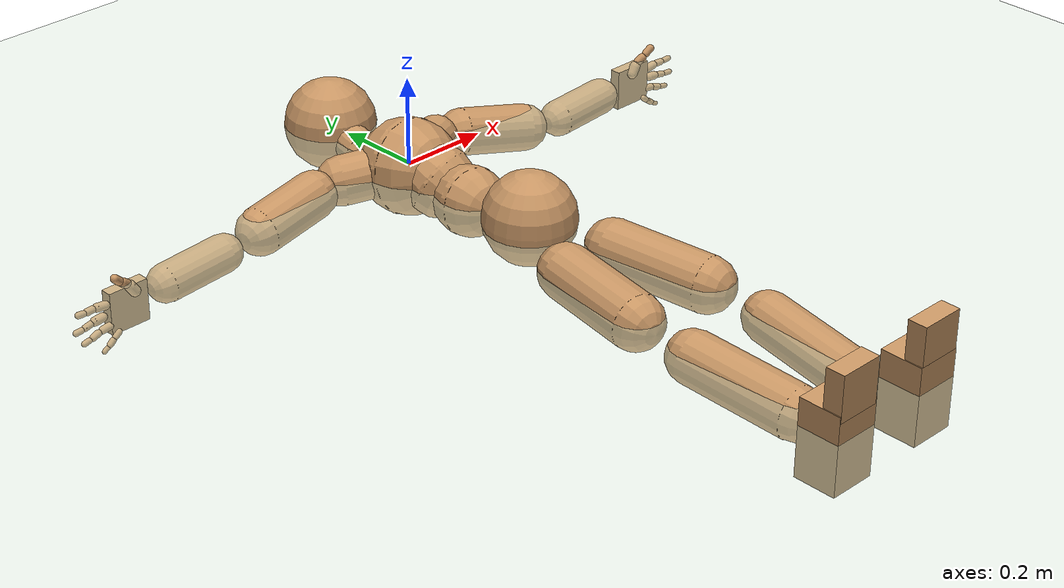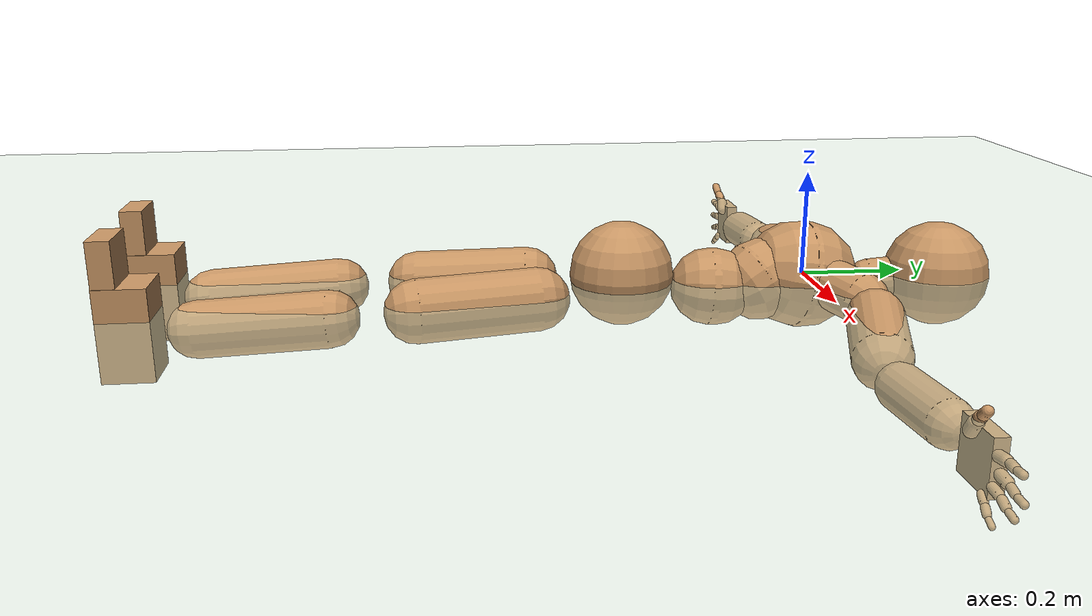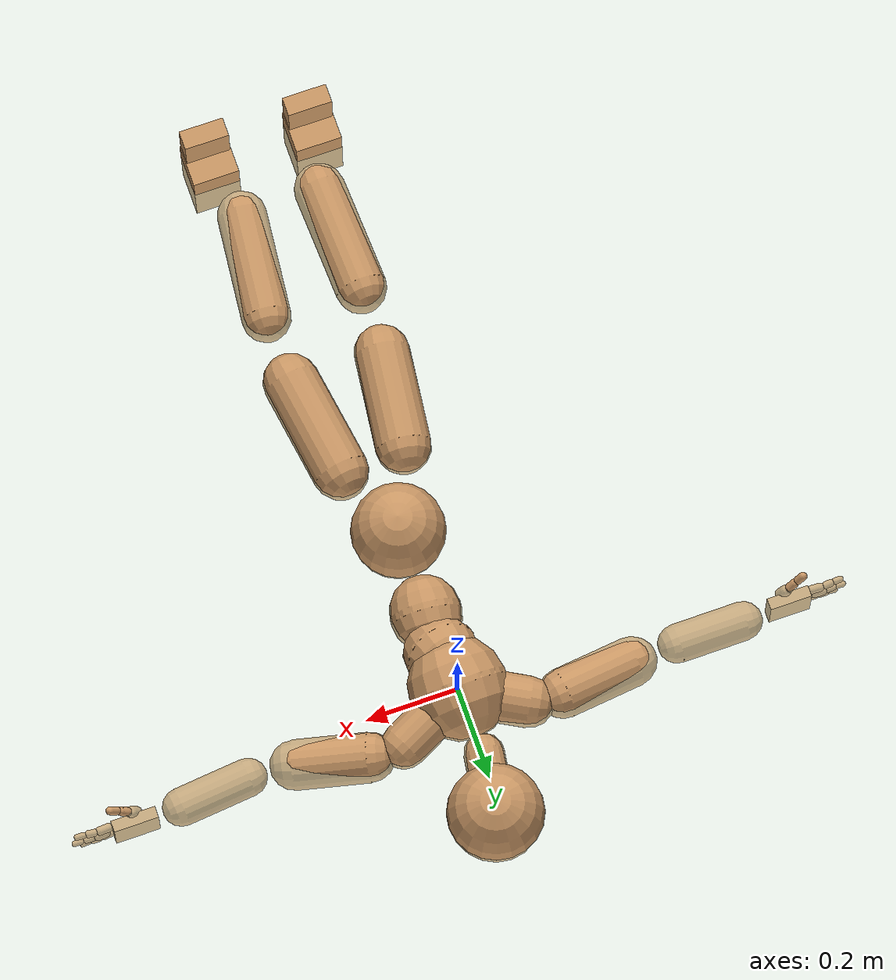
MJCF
<mujoco model="humanoid">
  <compiler coordinate="local"/>
  <default>
    <joint damping="0.0" armature="0.01" stiffness="0.0" limited="true"/>
    <geom conaffinity="1" condim="3" contype="7" margin="0.001" rgba="0.8 0.6 .4 1"/>
  </default>
  <asset>
    <texture type="skybox" builtin="gradient" rgb1=".4 .5 .6" rgb2="0 0 0" width="100" height="100"/>
    <texture builtin="flat" height="1278" mark="cross" markrgb="1 1 1" name="texgeom" random="0.01" rgb1="0.8 0.6 0.4" rgb2="0.8 0.6 0.4" type="cube" width="127"/>
    <texture builtin="checker" height="100" name="texplane" rgb1="0 0 0" rgb2="0.8 0.8 0.8" type="2d" width="100"/>
    <material name="MatPlane" reflectance="0.5" shininess="1" specular="1" texrepeat="60 60" texture="texplane"/>
    <material name="geom" texture="texgeom" texuniform="true"/>
  </asset>
  <worldbody>
    <light cutoff="100" diffuse="1 1 1" dir="-0 0 -1.3" directional="true" exponent="1" pos="0 0 1.3" specular=".1 .1 .1"/>
    <geom conaffinity="1" condim="3" name="floor" pos="0 0 0" rgba="0.8 0.9 0.8 1" size="100 100 .2" type="plane" material="MatPlane"/>
    <body name="Pelvis" pos="0.0031 -0.3633 0.0134">
      <freejoint name="Pelvis"/>
      <geom type="sphere" contype="1" conaffinity="1" density="4629.6296296296305" size="0.1008" pos="0.0000 0.0000 0.0000" name="Pelvis"/>
      <body name="L_Hip" pos="0.0587 -0.0945 -0.0247">
        <joint name="L_Hip_x" type="hinge" pos="0 0 0" axis="1 0 0" user="250 2.5 1 500 10 2" armature="0.01" range="-90.0000 90.0000" damping="0" stiffness="0"/>
        <joint name="L_Hip_y" type="hinge" pos="0 0 0" axis="0 1 0" user="250 2.5 1 500 10 2" armature="0.01" range="-90.0000 90.0000" damping="0" stiffness="0"/>
        <joint name="L_Hip_z" type="hinge" pos="0 0 0" axis="0 0 1" user="250 2.5 1 500 10 2" armature="0.01" range="-90.0000 90.0000" damping="0" stiffness="0"/>
        <geom type="capsule" contype="1" conaffinity="1" density="2040.816327" fromto="0.0110 -0.0749 -0.0017 0.0441 -0.2996 -0.0067" size="0.0604" name="L_Hip"/>
        <body name="L_Knee" pos="0.0551 -0.3746 -0.0083">
          <joint name="L_Knee_x" type="hinge" pos="0 0 0" axis="1 0 0" user="250 2.5 1 500 10 2" armature="0.01" range="-180.0000 180.0000" damping="0" stiffness="0"/>
          <joint name="L_Knee_y" type="hinge" pos="0 0 0" axis="0 1 0" user="250 2.5 1 500 10 2" armature="0.01" range="-5.6250 5.6250" damping="0" stiffness="0"/>
          <joint name="L_Knee_z" type="hinge" pos="0 0 0" axis="0 0 1" user="250 2.5 1 500 10 2" armature="0.01" range="-5.6250 5.6250" damping="0" stiffness="0"/>
          <geom type="capsule" contype="1" conaffinity="1" density="1234.567901" fromto="-0.0087 -0.0800 -0.0064 -0.0349 -0.3200 -0.0254" size="0.0535" name="L_Knee"/>
          <body name="L_Ankle" pos="-0.0436 -0.4001 -0.0318">
            <joint name="L_Ankle_x" type="hinge" pos="0 0 0" axis="1 0 0" user="150 2.5 1 500 10 2" armature="0.01" range="-90.0000 90.0000" damping="0" stiffness="0"/>
            <joint name="L_Ankle_y" type="hinge" pos="0 0 0" axis="0 1 0" user="150 2.5 1 500 10 2" armature="0.01" range="-90.0000 90.0000" damping="0" stiffness="0"/>
            <joint name="L_Ankle_z" type="hinge" pos="0 0 0" axis="0 0 1" user="150 2.5 1 500 10 2" armature="0.01" range="-90.0000 90.0000" damping="0" stiffness="0"/>
            <geom type="box" density="448.137585" pos="0.0414 -0.0284 0.0235" size="0.0505 0.0466 0.0858" quat="1.0000 0.0000 0.0000 0.0000" name="L_Ankle"/>
            <body name="L_Toe" pos="0.0482 -0.0575 0.1186">
              <joint name="L_Toe_x" type="hinge" pos="0 0 0" axis="1 0 0" user="150 1 1 500 1 1" armature="0.01" range="-90.0000 90.0000" damping="0" stiffness="0"/>
              <joint name="L_Toe_y" type="hinge" pos="0 0 0" axis="0 1 0" user="150 1 1 500 1 1" armature="0.01" range="-45.0000 45.0000" damping="0" stiffness="0"/>
              <joint name="L_Toe_z" type="hinge" pos="0 0 0" axis="0 0 1" user="150 1 1 500 1 1" armature="0.01" range="-45.0000 45.0000" damping="0" stiffness="0"/>
              <geom type="box" density="421.147635" pos="-0.0067 0.0033 0.0257" size="0.0484 0.0208 0.0499" quat="1.0000 0.0000 0.0000 0.0000" name="L_Toe"/>
            </body>
          </body>
        </body>
      </body>
      <body name="R_Hip" pos="-0.0636 -0.106 -0.0197">
        <joint name="R_Hip_x" type="hinge" pos="0 0 0" axis="1 0 0" user="250 2.5 1 500 10 2" armature="0.01" range="-90.0000 90.0000" damping="0" stiffness="0"/>
        <joint name="R_Hip_y" type="hinge" pos="0 0 0" axis="0 1 0" user="250 2.5 1 500 10 2" armature="0.01" range="-90.0000 90.0000" damping="0" stiffness="0"/>
        <joint name="R_Hip_z" type="hinge" pos="0 0 0" axis="0 0 1" user="250 2.5 1 500 10 2" armature="0.01" range="-90.0000 90.0000" damping="0" stiffness="0"/>
        <geom type="capsule" contype="1" conaffinity="1" density="2040.816327" fromto="-0.0089 -0.0716 -0.0032 -0.0358 -0.2863 -0.0128" size="0.0597" name="R_Hip"/>
        <body name="R_Knee" pos="-0.0447 -0.3578 -0.016">
          <joint name="R_Knee_x" type="hinge" pos="0 0 0" axis="1 0 0" user="250 2.5 1 500 10 2" armature="0.01" range="-180.0000 180.0000" damping="0" stiffness="0"/>
          <joint name="R_Knee_y" type="hinge" pos="0 0 0" axis="0 1 0" user="250 2.5 1 500 10 2" armature="0.01" range="-5.6250 5.6250" damping="0" stiffness="0"/>
          <joint name="R_Knee_z" type="hinge" pos="0 0 0" axis="0 0 1" user="250 2.5 1 500 10 2" armature="0.01" range="-5.6250 5.6250" damping="0" stiffness="0"/>
          <geom type="capsule" contype="1" conaffinity="1" density="1234.567901" fromto="0.0030 -0.0815 -0.0040 0.0121 -0.3261 -0.0160" size="0.0552" name="R_Knee"/>
          <body name="R_Ankle" pos="0.0151 -0.4076 -0.02">
            <joint name="R_Ankle_x" type="hinge" pos="0 0 0" axis="1 0 0" user="150 1 1 500 10 2" armature="0.01" range="-90.0000 90.0000" damping="0" stiffness="0"/>
            <joint name="R_Ankle_y" type="hinge" pos="0 0 0" axis="0 1 0" user="150 1 1 500 10 2" armature="0.01" range="-90.0000 90.0000" damping="0" stiffness="0"/>
            <joint name="R_Ankle_z" type="hinge" pos="0 0 0" axis="0 0 1" user="150 1 1 500 10 2" armature="0.01" range="-90.0000 90.0000" damping="0" stiffness="0"/>
            <geom type="box" density="448.12962" pos="-0.0247 -0.0260 0.0144" size="0.0505 0.0466 0.0858" quat="1.0000 0.0000 0.0000 0.0000" name="R_Ankle"/>
            <body name="R_Toe" pos="-0.0395 -0.0579 0.1195">
              <joint name="R_Toe_x" type="hinge" pos="0 0 0" axis="1 0 0" user="150 1 1 500 1 1" armature="0.01" range="-90.0000 90.0000" damping="0" stiffness="0"/>
              <joint name="R_Toe_y" type="hinge" pos="0 0 0" axis="0 1 0" user="150 1 1 500 1 1" armature="0.01" range="-45.0000 45.0000" damping="0" stiffness="0"/>
              <joint name="R_Toe_z" type="hinge" pos="0 0 0" axis="0 0 1" user="150 1 1 500 1 1" armature="0.01" range="-45.0000 45.0000" damping="0" stiffness="0"/>
              <geom type="box" density="421.148101" pos="0.0148 0.0060 0.0158" size="0.0484 0.0208 0.0499" quat="1.0000 0.0000 0.0000 0.0000" name="R_Toe"/>
            </body>
          </body>
        </body>
      </body>
      <body name="Torso" pos="-0.0027 0.1122 -0.0296">
        <joint name="Torso_x" type="hinge" pos="0 0 0" axis="1 0 0" user="500 5 1 500 10 2" armature="0.01" range="-60.0000 60.0000" damping="0" stiffness="0"/>
        <joint name="Torso_y" type="hinge" pos="0 0 0" axis="0 1 0" user="500 5 1 500 10 2" armature="0.01" range="-60.0000 60.0000" damping="0" stiffness="0"/>
        <joint name="Torso_z" type="hinge" pos="0 0 0" axis="0 0 1" user="500 5 1 500 10 2" armature="0.01" range="-60.0000 60.0000" damping="0" stiffness="0"/>
        <geom type="capsule" contype="1" conaffinity="1" density="2040.816327" fromto="0.0046 0.0612 -0.0028 0.0056 0.0748 -0.0035" size="0.0756" name="Torso"/>
        <body name="Spine" pos="0.0102 0.1359 -0.0063">
          <joint name="Spine_x" type="hinge" pos="0 0 0" axis="1 0 0" user="500 5 1 500 10 2" armature="0.01" range="-60.0000 60.0000" damping="0" stiffness="0"/>
          <joint name="Spine_y" type="hinge" pos="0 0 0" axis="0 1 0" user="500 5 1 500 10 2" armature="0.01" range="-60.0000 60.0000" damping="0" stiffness="0"/>
          <joint name="Spine_z" type="hinge" pos="0 0 0" axis="0 0 1" user="500 5 1 500 10 2" armature="0.01" range="-60.0000 60.0000" damping="0" stiffness="0"/>
          <geom type="capsule" contype="1" conaffinity="1" density="2040.816327" fromto="-0.0053 0.0243 0.0133 -0.0065 0.0297 0.0163" size="0.0791" name="Spine"/>
          <body name="Chest" pos="-0.0118 0.0539 0.0296">
            <joint name="Chest_x" type="hinge" pos="0 0 0" axis="1 0 0" user="500 5 1 500 10 2" armature="0.01" range="-60.0000 60.0000" damping="0" stiffness="0"/>
            <joint name="Chest_y" type="hinge" pos="0 0 0" axis="0 1 0" user="500 5 1 500 10 2" armature="0.01" range="-60.0000 60.0000" damping="0" stiffness="0"/>
            <joint name="Chest_z" type="hinge" pos="0 0 0" axis="0 0 1" user="500 5 1 500 10 2" armature="0.01" range="-60.0000 60.0000" damping="0" stiffness="0"/>
            <geom type="capsule" contype="1" conaffinity="1" density="2040.816327" fromto="-0.0022 0.0514 -0.0082 -0.0027 0.0629 -0.0101" size="0.1055" name="Chest"/>
            <body name="Neck" pos="-0.0127 0.1695 -0.0332">
              <joint name="Neck_x" type="hinge" pos="0 0 0" axis="1 0 0" user="150 1 1 250 50 4" armature="0.01" range="-180.0000 180.0000" damping="0" stiffness="0"/>
              <joint name="Neck_y" type="hinge" pos="0 0 0" axis="0 1 0" user="150 1 1 250 50 4" armature="0.01" range="-180.0000 180.0000" damping="0" stiffness="0"/>
              <joint name="Neck_z" type="hinge" pos="0 0 0" axis="0 0 1" user="150 1 1 250 50 4" armature="0.01" range="-180.0000 180.0000" damping="0" stiffness="0"/>
              <geom type="capsule" contype="1" conaffinity="1" density="1000" fromto="0.0051 0.0326 0.0042 0.0203 0.1305 0.0167" size="0.043" name="Neck"/>
              <body name="Head" pos="0.0254 0.1631 0.0208">
                <joint name="Head_x" type="hinge" pos="0 0 0" axis="1 0 0" user="150 1 1 250 50 4" armature="0.01" range="-90.0000 90.0000" damping="0" stiffness="0"/>
                <joint name="Head_y" type="hinge" pos="0 0 0" axis="0 1 0" user="150 1 1 250 50 4" armature="0.01" range="-90.0000 90.0000" damping="0" stiffness="0"/>
                <joint name="Head_z" type="hinge" pos="0 0 0" axis="0 0 1" user="150 1 1 250 50 4" armature="0.01" range="-90.0000 90.0000" damping="0" stiffness="0"/>
                <geom type="sphere" contype="1" conaffinity="1" density="1000" size="0.1025" pos="0.0000 0.0000 0.0000" name="Head"/>
              </body>
            </body>
            <body name="L_Thorax" pos="0.0468 0.087 -0.0078">
              <joint name="L_Thorax_x" type="hinge" pos="0 0 0" axis="1 0 0" user="200 2 1 500 50 4" armature="0.01" range="-180.0000 180.0000" damping="0" stiffness="0"/>
              <joint name="L_Thorax_y" type="hinge" pos="0 0 0" axis="0 1 0" user="200 2 1 500 50 4" armature="0.01" range="-180.0000 180.0000" damping="0" stiffness="0"/>
              <joint name="L_Thorax_z" type="hinge" pos="0 0 0" axis="0 0 1" user="200 2 1 500 50 4" armature="0.01" range="-180.0000 180.0000" damping="0" stiffness="0"/>
              <geom type="capsule" contype="1" conaffinity="1" density="1000" fromto="0.0240 0.0116 -0.0032 0.0961 0.0464 -0.0128" size="0.0496" name="L_Thorax"/>
              <body name="L_Shoulder" pos="0.1201 0.058 -0.016">
                <joint name="L_Shoulder_x" type="hinge" pos="0 0 0" axis="1 0 0" user="200 2 1 500 50 4" armature="0.01" range="-180.0000 180.0000" damping="0" stiffness="0"/>
                <joint name="L_Shoulder_y" type="hinge" pos="0 0 0" axis="0 1 0" user="200 2 1 500 50 4" armature="0.01" range="-180.0000 180.0000" damping="0" stiffness="0"/>
                <joint name="L_Shoulder_z" type="hinge" pos="0 0 0" axis="0 0 1" user="200 2 1 500 50 4" armature="0.01" range="-180.0000 180.0000" damping="0" stiffness="0"/>
                <geom type="capsule" contype="1" conaffinity="1" density="1000" fromto="0.0500 -0.0142 -0.0087 0.2001 -0.0570 -0.0346" size="0.053" name="L_Shoulder"/>
                <body name="L_Elbow" pos="0.2502 -0.0712 -0.0433">
                  <joint name="L_Elbow_x" type="hinge" pos="0 0 0" axis="1 0 0" user="150 1 1 150 10 2" armature="0.01" range="-720.0000 720.0000" damping="0" stiffness="0"/>
                  <joint name="L_Elbow_y" type="hinge" pos="0 0 0" axis="0 1 0" user="150 1 1 150 10 2" armature="0.01" range="-720.0000 720.0000" damping="0" stiffness="0"/>
                  <joint name="L_Elbow_z" type="hinge" pos="0 0 0" axis="0 0 1" user="150 1 1 150 10 2" armature="0.01" range="-720.0000 720.0000" damping="0" stiffness="0"/>
                  <geom type="capsule" contype="1" conaffinity="1" density="1000" fromto="0.0499 0.0048 -0.0003 0.1994 0.0190 -0.0012" size="0.0409" name="L_Elbow"/>
                  <body name="L_Wrist" pos="0.2493 0.0238 -0.0015">
                    <joint name="L_Wrist_x" type="hinge" pos="0 0 0" axis="1 0 0" user="100 1 1 150 1 1" armature="0.01" range="-180.0000 180.0000" damping="0" stiffness="0"/>
                    <joint name="L_Wrist_y" type="hinge" pos="0 0 0" axis="0 1 0" user="100 1 1 150 1 1" armature="0.01" range="-180.0000 180.0000" damping="0" stiffness="0"/>
                    <joint name="L_Wrist_z" type="hinge" pos="0 0 0" axis="0 0 1" user="100 1 1 150 1 1" armature="0.01" range="-180.0000 180.0000" damping="0" stiffness="0"/>
                    <geom type="box" density="1206.445546" pos="0.0521 -0.0011 -0.0029" size="0.0482 0.0124 0.0467" quat="1.0000 0.0000 0.0000 0.0000" name="L_Wrist"/>
                    <body name="L_Index1" pos="0.1014 -0.0083 0.0199">
                      <joint name="L_Index1_x" type="hinge" pos="0 0 0" axis="1 0 0" user="100 10 1 150" armature="0.01" range="-180.0000 180.0000" damping="0" stiffness="0"/>
                      <joint name="L_Index1_y" type="hinge" pos="0 0 0" axis="0 1 0" user="100 10 1 150" armature="0.01" range="-180.0000 180.0000" damping="0" stiffness="0"/>
                      <joint name="L_Index1_z" type="hinge" pos="0 0 0" axis="0 0 1" user="100 10 1 150" armature="0.01" range="-180.0000 180.0000" damping="0" stiffness="0"/>
                      <geom type="capsule" contype="1" conaffinity="1" density="1000" fromto="0.0064 0.0005 0.0006 0.0256 0.0018 0.0024" size="0.0093" name="L_Index1"/>
                      <body name="L_Index2" pos="0.032 0.0023 0.003">
                        <joint name="L_Index2_x" type="hinge" pos="0 0 0" axis="1 0 0" user="100 10 1 150" armature="0.01" range="-180.0000 180.0000" damping="0" stiffness="0"/>
                        <joint name="L_Index2_y" type="hinge" pos="0 0 0" axis="0 1 0" user="100 10 1 150" armature="0.01" range="-180.0000 180.0000" damping="0" stiffness="0"/>
                        <joint name="L_Index2_z" type="hinge" pos="0 0 0" axis="0 0 1" user="100 10 1 150" armature="0.01" range="-180.0000 180.0000" damping="0" stiffness="0"/>
                        <geom type="capsule" contype="1" conaffinity="1" density="1000" fromto="0.0045 -0.0005 -0.0000 0.0180 -0.0019 -0.0000" size="0.0077" name="L_Index2"/>
                        <body name="L_Index3" pos="0.0225 -0.0024 0">
                          <joint name="L_Index3_x" type="hinge" pos="0 0 0" axis="1 0 0" user="100 10 1 150" armature="0.01" range="-180.0000 180.0000" damping="0" stiffness="0"/>
                          <joint name="L_Index3_y" type="hinge" pos="0 0 0" axis="0 1 0" user="100 10 1 150" armature="0.01" range="-180.0000 180.0000" damping="0" stiffness="0"/>
                          <joint name="L_Index3_z" type="hinge" pos="0 0 0" axis="0 0 1" user="100 10 1 150" armature="0.01" range="-180.0000 180.0000" damping="0" stiffness="0"/>
                          <geom type="capsule" contype="1" conaffinity="1" density="1000" fromto="0.0049 -0.0001 0.0004 0.0196 -0.0003 0.0016" size="0.0065" name="L_Index3"/>
                        </body>
                      </body>
                    </body>
                    <body name="L_Middle1" pos="0.109 -0.0059 -0.0039">
                      <joint name="L_Middle1_x" type="hinge" pos="0 0 0" axis="1 0 0" user="100 10 1 150" armature="0.01" range="-180.0000 180.0000" damping="0" stiffness="0"/>
                      <joint name="L_Middle1_y" type="hinge" pos="0 0 0" axis="0 1 0" user="100 10 1 150" armature="0.01" range="-180.0000 180.0000" damping="0" stiffness="0"/>
                      <joint name="L_Middle1_z" type="hinge" pos="0 0 0" axis="0 0 1" user="100 10 1 150" armature="0.01" range="-180.0000 180.0000" damping="0" stiffness="0"/>
                      <geom type="capsule" contype="1" conaffinity="1" density="1000" fromto="0.0061 0.0002 -0.0008 0.0245 0.0007 -0.0032" size="0.0096" name="L_Middle1"/>
                      <body name="L_Middle2" pos="0.0306 0.0008 -0.0041">
                        <joint name="L_Middle2_x" type="hinge" pos="0 0 0" axis="1 0 0" user="100 10 1 150" armature="0.01" range="-180.0000 180.0000" damping="0" stiffness="0"/>
                        <joint name="L_Middle2_y" type="hinge" pos="0 0 0" axis="0 1 0" user="100 10 1 150" armature="0.01" range="-180.0000 180.0000" damping="0" stiffness="0"/>
                        <joint name="L_Middle2_z" type="hinge" pos="0 0 0" axis="0 0 1" user="100 10 1 150" armature="0.01" range="-180.0000 180.0000" damping="0" stiffness="0"/>
                        <geom type="capsule" contype="1" conaffinity="1" density="1000" fromto="0.0047 -0.0004 -0.0008 0.0188 -0.0016 -0.0033" size="0.0071" name="L_Middle2"/>
                        <body name="L_Middle3" pos="0.0235 -0.002 -0.0042">
                          <joint name="L_Middle3_x" type="hinge" pos="0 0 0" axis="1 0 0" user="100 10 1 150" armature="0.01" range="-180.0000 180.0000" damping="0" stiffness="0"/>
                          <joint name="L_Middle3_y" type="hinge" pos="0 0 0" axis="0 1 0" user="100 10 1 150" armature="0.01" range="-180.0000 180.0000" damping="0" stiffness="0"/>
                          <joint name="L_Middle3_z" type="hinge" pos="0 0 0" axis="0 0 1" user="100 10 1 150" armature="0.01" range="-180.0000 180.0000" damping="0" stiffness="0"/>
                          <geom type="capsule" contype="1" conaffinity="1" density="1000" fromto="0.0051 -0.0000 -0.0004 0.0204 -0.0000 -0.0017" size="0.0061" name="L_Middle3"/>
                        </body>
                      </body>
                    </body>
                    <body name="L_Pinky1" pos="0.0836 -0.0144 -0.0443">
                      <joint name="L_Pinky1_x" type="hinge" pos="0 0 0" axis="1 0 0" user="100 10 1 150" armature="0.01" range="-180.0000 180.0000" damping="0" stiffness="0"/>
                      <joint name="L_Pinky1_y" type="hinge" pos="0 0 0" axis="0 1 0" user="100 10 1 150" armature="0.01" range="-180.0000 180.0000" damping="0" stiffness="0"/>
                      <joint name="L_Pinky1_z" type="hinge" pos="0 0 0" axis="0 0 1" user="100 10 1 150" armature="0.01" range="-180.0000 180.0000" damping="0" stiffness="0"/>
                      <geom type="capsule" contype="1" conaffinity="1" density="1000" fromto="0.0031 -0.0002 -0.0024 0.0125 -0.0009 -0.0097" size="0.0068" name="L_Pinky1"/>
                      <body name="L_Pinky2" pos="0.0156 -0.0012 -0.0121">
                        <joint name="L_Pinky2_x" type="hinge" pos="0 0 0" axis="1 0 0" user="100 10 1 150" armature="0.01" range="-180.0000 180.0000" damping="0" stiffness="0"/>
                        <joint name="L_Pinky2_y" type="hinge" pos="0 0 0" axis="0 1 0" user="100 10 1 150" armature="0.01" range="-180.0000 180.0000" damping="0" stiffness="0"/>
                        <joint name="L_Pinky2_z" type="hinge" pos="0 0 0" axis="0 0 1" user="100 10 1 150" armature="0.01" range="-180.0000 180.0000" damping="0" stiffness="0"/>
                        <geom type="capsule" contype="1" conaffinity="1" density="1000" fromto="0.0031 -0.0003 -0.0022 0.0125 -0.0014 -0.0090" size="0.0066" name="L_Pinky2"/>
                        <body name="L_Pinky3" pos="0.0156 -0.0017 -0.0112">
                          <joint name="L_Pinky3_x" type="hinge" pos="0 0 0" axis="1 0 0" user="100 10 1 150" armature="0.01" range="-180.0000 180.0000" damping="0" stiffness="0"/>
                          <joint name="L_Pinky3_y" type="hinge" pos="0 0 0" axis="0 1 0" user="100 10 1 150" armature="0.01" range="-180.0000 180.0000" damping="0" stiffness="0"/>
                          <joint name="L_Pinky3_z" type="hinge" pos="0 0 0" axis="0 0 1" user="100 10 1 150" armature="0.01" range="-180.0000 180.0000" damping="0" stiffness="0"/>
                          <geom type="capsule" contype="1" conaffinity="1" density="1000" fromto="0.0035 0.0001 -0.0018 0.0141 0.0002 -0.0074" size="0.005" name="L_Pinky3"/>
                        </body>
                      </body>
                    </body>
                    <body name="L_Ring1" pos="0.097 -0.009 -0.0277">
                      <joint name="L_Ring1_x" type="hinge" pos="0 0 0" axis="1 0 0" user="100 10 1 150" armature="0.01" range="-180.0000 180.0000" damping="0" stiffness="0"/>
                      <joint name="L_Ring1_y" type="hinge" pos="0 0 0" axis="0 1 0" user="100 10 1 150" armature="0.01" range="-180.0000 180.0000" damping="0" stiffness="0"/>
                      <joint name="L_Ring1_z" type="hinge" pos="0 0 0" axis="0 0 1" user="100 10 1 150" armature="0.01" range="-180.0000 180.0000" damping="0" stiffness="0"/>
                      <geom type="capsule" contype="1" conaffinity="1" density="1000" fromto="0.0056 0.0003 -0.0011 0.0225 0.0012 -0.0042" size="0.0081" name="L_Ring1"/>
                      <body name="L_Ring2" pos="0.0281 0.0015 -0.0053">
                        <joint name="L_Ring2_x" type="hinge" pos="0 0 0" axis="1 0 0" user="100 10 1 150" armature="0.01" range="-180.0000 180.0000" damping="0" stiffness="0"/>
                        <joint name="L_Ring2_y" type="hinge" pos="0 0 0" axis="0 1 0" user="100 10 1 150" armature="0.01" range="-180.0000 180.0000" damping="0" stiffness="0"/>
                        <joint name="L_Ring2_z" type="hinge" pos="0 0 0" axis="0 0 1" user="100 10 1 150" armature="0.01" range="-180.0000 180.0000" damping="0" stiffness="0"/>
                        <geom type="capsule" contype="1" conaffinity="1" density="1000" fromto="0.0046 -0.0003 -0.0014 0.0183 -0.0012 -0.0057" size="0.0075" name="L_Ring2"/>
                        <body name="L_Ring3" pos="0.0229 -0.0015 -0.0071">
                          <joint name="L_Ring3_x" type="hinge" pos="0 0 0" axis="1 0 0" user="100 10 1 150" armature="0.01" range="-180.0000 180.0000" damping="0" stiffness="0"/>
                          <joint name="L_Ring3_y" type="hinge" pos="0 0 0" axis="0 1 0" user="100 10 1 150" armature="0.01" range="-180.0000 180.0000" damping="0" stiffness="0"/>
                          <joint name="L_Ring3_z" type="hinge" pos="0 0 0" axis="0 0 1" user="100 10 1 150" armature="0.01" range="-180.0000 180.0000" damping="0" stiffness="0"/>
                          <geom type="capsule" contype="1" conaffinity="1" density="1000" fromto="0.0050 0.0001 -0.0010 0.0199 0.0004 -0.0041" size="0.0058" name="L_Ring3"/>
                        </body>
                      </body>
                    </body>
                    <body name="L_Thumb1" pos="0.0401 -0.0181 0.0263">
                      <joint name="L_Thumb1_x" type="hinge" pos="0 0 0" axis="1 0 0" user="100 10 1 150" armature="0.01" range="-180.0000 180.0000" damping="0" stiffness="0"/>
                      <joint name="L_Thumb1_y" type="hinge" pos="0 0 0" axis="0 1 0" user="100 10 1 150" armature="0.01" range="-180.0000 180.0000" damping="0" stiffness="0"/>
                      <joint name="L_Thumb1_z" type="hinge" pos="0 0 0" axis="0 0 1" user="100 10 1 150" armature="0.01" range="-180.0000 180.0000" damping="0" stiffness="0"/>
                      <geom type="capsule" contype="1" conaffinity="1" density="1000" fromto="0.0034 0.0002 0.0051 0.0135 0.0009 0.0202" size="0.0122" name="L_Thumb1"/>
                      <body name="L_Thumb2" pos="0.0169 0.0011 0.0253">
                        <joint name="L_Thumb2_x" type="hinge" pos="0 0 0" axis="1 0 0" user="100 10 1 150" armature="0.01" range="-180.0000 180.0000" damping="0" stiffness="0"/>
                        <joint name="L_Thumb2_y" type="hinge" pos="0 0 0" axis="0 1 0" user="100 10 1 150" armature="0.01" range="-180.0000 180.0000" damping="0" stiffness="0"/>
                        <joint name="L_Thumb2_z" type="hinge" pos="0 0 0" axis="0 0 1" user="100 10 1 150" armature="0.01" range="-180.0000 180.0000" damping="0" stiffness="0"/>
                        <geom type="capsule" contype="1" conaffinity="1" density="1000" fromto="0.0041 -0.0010 0.0031 0.0164 -0.0042 0.0125" size="0.0097" name="L_Thumb2"/>
                        <body name="L_Thumb3" pos="0.0205 -0.0052 0.0156">
                          <joint name="L_Thumb3_x" type="hinge" pos="0 0 0" axis="1 0 0" user="100 10 1 150" armature="0.01" range="-180.0000 180.0000" damping="0" stiffness="0"/>
                          <joint name="L_Thumb3_y" type="hinge" pos="0 0 0" axis="0 1 0" user="100 10 1 150" armature="0.01" range="-180.0000 180.0000" damping="0" stiffness="0"/>
                          <joint name="L_Thumb3_z" type="hinge" pos="0 0 0" axis="0 0 1" user="100 10 1 150" armature="0.01" range="-180.0000 180.0000" damping="0" stiffness="0"/>
                          <geom type="capsule" contype="1" conaffinity="1" density="1000" fromto="0.0045 -0.0006 0.0035 0.0180 -0.0026 0.0141" size="0.0088" name="L_Thumb3"/>
                        </body>
                      </body>
                    </body>
                  </body>
                </body>
              </body>
            </body>
            <body name="R_Thorax" pos="-0.0489 0.0863 -0.014">
              <joint name="R_Thorax_x" type="hinge" pos="0 0 0" axis="1 0 0" user="200 2 1 150 10 2" armature="0.01" range="-180.0000 180.0000" damping="0" stiffness="0"/>
              <joint name="R_Thorax_y" type="hinge" pos="0 0 0" axis="0 1 0" user="200 2 1 150 10 2" armature="0.01" range="-180.0000 180.0000" damping="0" stiffness="0"/>
              <joint name="R_Thorax_z" type="hinge" pos="0 0 0" axis="0 0 1" user="200 2 1 150 10 2" armature="0.01" range="-180.0000 180.0000" damping="0" stiffness="0"/>
              <geom type="capsule" contype="1" conaffinity="1" density="1000" fromto="-0.0206 0.0107 -0.0027 -0.0826 0.0428 -0.0108" size="0.0545" name="R_Thorax"/>
              <body name="R_Shoulder" pos="-0.1032 0.0536 -0.0135">
                <joint name="R_Shoulder_x" type="hinge" pos="0 0 0" axis="1 0 0" user="200 2 1 250 10 2" armature="0.01" range="-180.0000 180.0000" damping="0" stiffness="0"/>
                <joint name="R_Shoulder_y" type="hinge" pos="0 0 0" axis="0 1 0" user="200 2 1 250 10 2" armature="0.01" range="-180.0000 180.0000" damping="0" stiffness="0"/>
                <joint name="R_Shoulder_z" type="hinge" pos="0 0 0" axis="0 0 1" user="200 2 1 250 10 2" armature="0.01" range="-180.0000 180.0000" damping="0" stiffness="0"/>
                <geom type="capsule" contype="1" conaffinity="1" density="1000" fromto="-0.0534 -0.0069 -0.0054 -0.2138 -0.0278 -0.0214" size="0.0529" name="R_Shoulder"/>
                <body name="R_Elbow" pos="-0.2672 -0.0347 -0.0268">
                  <joint name="R_Elbow_x" type="hinge" pos="0 0 0" axis="1 0 0" user="150 1 1 150 10 2" armature="0.01" range="-720.0000 720.0000" damping="0" stiffness="0"/>
                  <joint name="R_Elbow_y" type="hinge" pos="0 0 0" axis="0 1 0" user="150 1 1 150 10 2" armature="0.01" range="-720.0000 720.0000" damping="0" stiffness="0"/>
                  <joint name="R_Elbow_z" type="hinge" pos="0 0 0" axis="0 0 1" user="150 1 1 150 10 2" armature="0.01" range="-720.0000 720.0000" damping="0" stiffness="0"/>
                  <geom type="capsule" contype="1" conaffinity="1" density="1000" fromto="-0.0493 -0.0009 -0.0029 -0.1973 -0.0037 -0.0115" size="0.0412" name="R_Elbow"/>
                  <body name="R_Wrist" pos="-0.2466 -0.0046 -0.0144">
                    <joint name="R_Wrist_x" type="hinge" pos="0 0 0" axis="1 0 0" user="100 1 1 150 1 1" armature="0.01" range="-180.0000 180.0000" damping="0" stiffness="0"/>
                    <joint name="R_Wrist_y" type="hinge" pos="0 0 0" axis="0 1 0" user="100 1 1 150 1 1" armature="0.01" range="-180.0000 180.0000" damping="0" stiffness="0"/>
                    <joint name="R_Wrist_z" type="hinge" pos="0 0 0" axis="0 0 1" user="100 1 1 150 1 1" armature="0.01" range="-180.0000 180.0000" damping="0" stiffness="0"/>
                    <geom type="box" density="1239.091271" pos="-0.0535 -0.0043 -0.0029" size="0.0453 0.0124 0.0467" quat="1.0000 0.0000 0.0000 0.0000" name="R_Wrist"/>
                    <body name="R_Index1" pos="-0.0995 -0.0114 0.0199">
                      <joint name="R_Index1_x" type="hinge" pos="0 0 0" axis="1 0 0" user="100 10 1 150" armature="0.01" range="-180.0000 180.0000" damping="0" stiffness="0"/>
                      <joint name="R_Index1_y" type="hinge" pos="0 0 0" axis="0 1 0" user="100 10 1 150" armature="0.01" range="-180.0000 180.0000" damping="0" stiffness="0"/>
                      <joint name="R_Index1_z" type="hinge" pos="0 0 0" axis="0 0 1" user="100 10 1 150" armature="0.01" range="-180.0000 180.0000" damping="0" stiffness="0"/>
                      <geom type="capsule" contype="1" conaffinity="1" density="1000" fromto="-0.0064 0.0005 0.0006 -0.0256 0.0018 0.0024" size="0.0093" name="R_Index1"/>
                      <body name="R_Index2" pos="-0.032 0.0023 0.003">
                        <joint name="R_Index2_x" type="hinge" pos="0 0 0" axis="1 0 0" user="100 10 1 150" armature="0.01" range="-180.0000 180.0000" damping="0" stiffness="0"/>
                        <joint name="R_Index2_y" type="hinge" pos="0 0 0" axis="0 1 0" user="100 10 1 150" armature="0.01" range="-180.0000 180.0000" damping="0" stiffness="0"/>
                        <joint name="R_Index2_z" type="hinge" pos="0 0 0" axis="0 0 1" user="100 10 1 150" armature="0.01" range="-180.0000 180.0000" damping="0" stiffness="0"/>
                        <geom type="capsule" contype="1" conaffinity="1" density="1000" fromto="-0.0045 -0.0005 -0.0000 -0.0180 -0.0019 -0.0000" size="0.0077" name="R_Index2"/>
                        <body name="R_Index3" pos="-0.0225 -0.0024 0">
                          <joint name="R_Index3_x" type="hinge" pos="0 0 0" axis="1 0 0" user="100 10 1 150" armature="0.01" range="-180.0000 180.0000" damping="0" stiffness="0"/>
                          <joint name="R_Index3_y" type="hinge" pos="0 0 0" axis="0 1 0" user="100 10 1 150" armature="0.01" range="-180.0000 180.0000" damping="0" stiffness="0"/>
                          <joint name="R_Index3_z" type="hinge" pos="0 0 0" axis="0 0 1" user="100 10 1 150" armature="0.01" range="-180.0000 180.0000" damping="0" stiffness="0"/>
                          <geom type="capsule" contype="1" conaffinity="1" density="1000" fromto="-0.0041 -0.0001 0.0004 -0.0164 -0.0003 0.0016" size="0.0068" name="R_Index3"/>
                        </body>
                      </body>
                    </body>
                    <body name="R_Middle1" pos="-0.107 -0.009 -0.0038">
                      <joint name="R_Middle1_x" type="hinge" pos="0 0 0" axis="1 0 0" user="100 10 1 150" armature="0.01" range="-180.0000 180.0000" damping="0" stiffness="0"/>
                      <joint name="R_Middle1_y" type="hinge" pos="0 0 0" axis="0 1 0" user="100 10 1 150" armature="0.01" range="-180.0000 180.0000" damping="0" stiffness="0"/>
                      <joint name="R_Middle1_z" type="hinge" pos="0 0 0" axis="0 0 1" user="100 10 1 150" armature="0.01" range="-180.0000 180.0000" damping="0" stiffness="0"/>
                      <geom type="capsule" contype="1" conaffinity="1" density="1000" fromto="-0.0061 0.0002 -0.0008 -0.0245 0.0007 -0.0032" size="0.0096" name="R_Middle1"/>
                      <body name="R_Middle2" pos="-0.0306 0.0008 -0.0041">
                        <joint name="R_Middle2_x" type="hinge" pos="0 0 0" axis="1 0 0" user="100 10 1 150" armature="0.01" range="-180.0000 180.0000" damping="0" stiffness="0"/>
                        <joint name="R_Middle2_y" type="hinge" pos="0 0 0" axis="0 1 0" user="100 10 1 150" armature="0.01" range="-180.0000 180.0000" damping="0" stiffness="0"/>
                        <joint name="R_Middle2_z" type="hinge" pos="0 0 0" axis="0 0 1" user="100 10 1 150" armature="0.01" range="-180.0000 180.0000" damping="0" stiffness="0"/>
                        <geom type="capsule" contype="1" conaffinity="1" density="1000" fromto="-0.0047 -0.0004 -0.0008 -0.0188 -0.0016 -0.0033" size="0.0071" name="R_Middle2"/>
                        <body name="R_Middle3" pos="-0.0235 -0.002 -0.0042">
                          <joint name="R_Middle3_x" type="hinge" pos="0 0 0" axis="1 0 0" user="100 10 1 150" armature="0.01" range="-180.0000 180.0000" damping="0" stiffness="0"/>
                          <joint name="R_Middle3_y" type="hinge" pos="0 0 0" axis="0 1 0" user="100 10 1 150" armature="0.01" range="-180.0000 180.0000" damping="0" stiffness="0"/>
                          <joint name="R_Middle3_z" type="hinge" pos="0 0 0" axis="0 0 1" user="100 10 1 150" armature="0.01" range="-180.0000 180.0000" damping="0" stiffness="0"/>
                          <geom type="capsule" contype="1" conaffinity="1" density="1000" fromto="-0.0043 -0.0000 -0.0004 -0.0172 -0.0000 -0.0017" size="0.0064" name="R_Middle3"/>
                        </body>
                      </body>
                    </body>
                    <body name="R_Pinky1" pos="-0.0816 -0.0175 -0.0442">
                      <joint name="R_Pinky1_x" type="hinge" pos="0 0 0" axis="1 0 0" user="100 10 1 150" armature="0.01" range="-180.0000 180.0000" damping="0" stiffness="0"/>
                      <joint name="R_Pinky1_y" type="hinge" pos="0 0 0" axis="0 1 0" user="100 10 1 150" armature="0.01" range="-180.0000 180.0000" damping="0" stiffness="0"/>
                      <joint name="R_Pinky1_z" type="hinge" pos="0 0 0" axis="0 0 1" user="100 10 1 150" armature="0.01" range="-180.0000 180.0000" damping="0" stiffness="0"/>
                      <geom type="capsule" contype="1" conaffinity="1" density="1000" fromto="-0.0031 -0.0002 -0.0024 -0.0125 -0.0009 -0.0097" size="0.0068" name="R_Pinky1"/>
                      <body name="R_Pinky2" pos="-0.0156 -0.0012 -0.0121">
                        <joint name="R_Pinky2_x" type="hinge" pos="0 0 0" axis="1 0 0" user="100 10 1 150" armature="0.01" range="-180.0000 180.0000" damping="0" stiffness="0"/>
                        <joint name="R_Pinky2_y" type="hinge" pos="0 0 0" axis="0 1 0" user="100 10 1 150" armature="0.01" range="-180.0000 180.0000" damping="0" stiffness="0"/>
                        <joint name="R_Pinky2_z" type="hinge" pos="0 0 0" axis="0 0 1" user="100 10 1 150" armature="0.01" range="-180.0000 180.0000" damping="0" stiffness="0"/>
                        <geom type="capsule" contype="1" conaffinity="1" density="1000" fromto="-0.0031 -0.0003 -0.0022 -0.0125 -0.0014 -0.0090" size="0.0066" name="R_Pinky2"/>
                        <body name="R_Pinky3" pos="-0.0156 -0.0017 -0.0112">
                          <joint name="R_Pinky3_x" type="hinge" pos="0 0 0" axis="1 0 0" user="100 10 1 150" armature="0.01" range="-180.0000 180.0000" damping="0" stiffness="0"/>
                          <joint name="R_Pinky3_y" type="hinge" pos="0 0 0" axis="0 1 0" user="100 10 1 150" armature="0.01" range="-180.0000 180.0000" damping="0" stiffness="0"/>
                          <joint name="R_Pinky3_z" type="hinge" pos="0 0 0" axis="0 0 1" user="100 10 1 150" armature="0.01" range="-180.0000 180.0000" damping="0" stiffness="0"/>
                          <geom type="capsule" contype="1" conaffinity="1" density="1000" fromto="-0.0027 0.0001 -0.0018 -0.0109 0.0002 -0.0074" size="0.0052" name="R_Pinky3"/>
                        </body>
                      </body>
                    </body>
                    <body name="R_Ring1" pos="-0.095 -0.0121 -0.0276">
                      <joint name="R_Ring1_x" type="hinge" pos="0 0 0" axis="1 0 0" user="100 10 1 150" armature="0.01" range="-180.0000 180.0000" damping="0" stiffness="0"/>
                      <joint name="R_Ring1_y" type="hinge" pos="0 0 0" axis="0 1 0" user="100 10 1 150" armature="0.01" range="-180.0000 180.0000" damping="0" stiffness="0"/>
                      <joint name="R_Ring1_z" type="hinge" pos="0 0 0" axis="0 0 1" user="100 10 1 150" armature="0.01" range="-180.0000 180.0000" damping="0" stiffness="0"/>
                      <geom type="capsule" contype="1" conaffinity="1" density="1000" fromto="-0.0056 0.0003 -0.0011 -0.0225 0.0012 -0.0042" size="0.0081" name="R_Ring1"/>
                      <body name="R_Ring2" pos="-0.0281 0.0015 -0.0053">
                        <joint name="R_Ring2_x" type="hinge" pos="0 0 0" axis="1 0 0" user="100 10 1 150" armature="0.01" range="-180.0000 180.0000" damping="0" stiffness="0"/>
                        <joint name="R_Ring2_y" type="hinge" pos="0 0 0" axis="0 1 0" user="100 10 1 150" armature="0.01" range="-180.0000 180.0000" damping="0" stiffness="0"/>
                        <joint name="R_Ring2_z" type="hinge" pos="0 0 0" axis="0 0 1" user="100 10 1 150" armature="0.01" range="-180.0000 180.0000" damping="0" stiffness="0"/>
                        <geom type="capsule" contype="1" conaffinity="1" density="1000" fromto="-0.0046 -0.0003 -0.0014 -0.0183 -0.0012 -0.0057" size="0.0075" name="R_Ring2"/>
                        <body name="R_Ring3" pos="-0.0229 -0.0015 -0.0071">
                          <joint name="R_Ring3_x" type="hinge" pos="0 0 0" axis="1 0 0" user="100 10 1 150" armature="0.01" range="-180.0000 180.0000" damping="0" stiffness="0"/>
                          <joint name="R_Ring3_y" type="hinge" pos="0 0 0" axis="0 1 0" user="100 10 1 150" armature="0.01" range="-180.0000 180.0000" damping="0" stiffness="0"/>
                          <joint name="R_Ring3_z" type="hinge" pos="0 0 0" axis="0 0 1" user="100 10 1 150" armature="0.01" range="-180.0000 180.0000" damping="0" stiffness="0"/>
                          <geom type="capsule" contype="1" conaffinity="1" density="1000" fromto="-0.0042 0.0001 -0.0010 -0.0167 0.0004 -0.0041" size="0.0061" name="R_Ring3"/>
                        </body>
                      </body>
                    </body>
                    <body name="R_Thumb1" pos="-0.0381 -0.0212 0.0264">
                      <joint name="R_Thumb1_x" type="hinge" pos="0 0 0" axis="1 0 0" user="100 10 1 150" armature="0.01" range="-180.0000 180.0000" damping="0" stiffness="0"/>
                      <joint name="R_Thumb1_y" type="hinge" pos="0 0 0" axis="0 1 0" user="100 10 1 150" armature="0.01" range="-180.0000 180.0000" damping="0" stiffness="0"/>
                      <joint name="R_Thumb1_z" type="hinge" pos="0 0 0" axis="0 0 1" user="100 10 1 150" armature="0.01" range="-180.0000 180.0000" damping="0" stiffness="0"/>
                      <geom type="capsule" contype="1" conaffinity="1" density="1000" fromto="-0.0034 0.0002 0.0051 -0.0135 0.0009 0.0202" size="0.0122" name="R_Thumb1"/>
                      <body name="R_Thumb2" pos="-0.0169 0.0011 0.0253">
                        <joint name="R_Thumb2_x" type="hinge" pos="0 0 0" axis="1 0 0" user="100 10 1 150" armature="0.01" range="-180.0000 180.0000" damping="0" stiffness="0"/>
                        <joint name="R_Thumb2_y" type="hinge" pos="0 0 0" axis="0 1 0" user="100 10 1 150" armature="0.01" range="-180.0000 180.0000" damping="0" stiffness="0"/>
                        <joint name="R_Thumb2_z" type="hinge" pos="0 0 0" axis="0 0 1" user="100 10 1 150" armature="0.01" range="-180.0000 180.0000" damping="0" stiffness="0"/>
                        <geom type="capsule" contype="1" conaffinity="1" density="1000" fromto="-0.0041 -0.0010 0.0031 -0.0164 -0.0042 0.0125" size="0.0097" name="R_Thumb2"/>
                        <body name="R_Thumb3" pos="-0.0205 -0.0052 0.0156">
                          <joint name="R_Thumb3_x" type="hinge" pos="0 0 0" axis="1 0 0" user="100 10 1 150" armature="0.01" range="-180.0000 180.0000" damping="0" stiffness="0"/>
                          <joint name="R_Thumb3_y" type="hinge" pos="0 0 0" axis="0 1 0" user="100 10 1 150" armature="0.01" range="-180.0000 180.0000" damping="0" stiffness="0"/>
                          <joint name="R_Thumb3_z" type="hinge" pos="0 0 0" axis="0 0 1" user="100 10 1 150" armature="0.01" range="-180.0000 180.0000" damping="0" stiffness="0"/>
                          <geom type="capsule" contype="1" conaffinity="1" density="1000" fromto="-0.0037 -0.0006 0.0035 -0.0148 -0.0026 0.0141" size="0.0091" name="R_Thumb3"/>
                        </body>
                      </body>
                    </body>
                  </body>
                </body>
              </body>
            </body>
          </body>
        </body>
      </body>
    </body>
  </worldbody>
  <actuator>
    <motor name="L_Hip_x" joint="L_Hip_x" gear="1"/>
    <motor name="L_Hip_y" joint="L_Hip_y" gear="1"/>
    <motor name="L_Hip_z" joint="L_Hip_z" gear="1"/>
    <motor name="L_Knee_x" joint="L_Knee_x" gear="1"/>
    <motor name="L_Knee_y" joint="L_Knee_y" gear="1"/>
    <motor name="L_Knee_z" joint="L_Knee_z" gear="1"/>
    <motor name="L_Ankle_x" joint="L_Ankle_x" gear="1"/>
    <motor name="L_Ankle_y" joint="L_Ankle_y" gear="1"/>
    <motor name="L_Ankle_z" joint="L_Ankle_z" gear="1"/>
    <motor name="L_Toe_x" joint="L_Toe_x" gear="1"/>
    <motor name="L_Toe_y" joint="L_Toe_y" gear="1"/>
    <motor name="L_Toe_z" joint="L_Toe_z" gear="1"/>
    <motor name="R_Hip_x" joint="R_Hip_x" gear="1"/>
    <motor name="R_Hip_y" joint="R_Hip_y" gear="1"/>
    <motor name="R_Hip_z" joint="R_Hip_z" gear="1"/>
    <motor name="R_Knee_x" joint="R_Knee_x" gear="1"/>
    <motor name="R_Knee_y" joint="R_Knee_y" gear="1"/>
    <motor name="R_Knee_z" joint="R_Knee_z" gear="1"/>
    <motor name="R_Ankle_x" joint="R_Ankle_x" gear="1"/>
    <motor name="R_Ankle_y" joint="R_Ankle_y" gear="1"/>
    <motor name="R_Ankle_z" joint="R_Ankle_z" gear="1"/>
    <motor name="R_Toe_x" joint="R_Toe_x" gear="1"/>
    <motor name="R_Toe_y" joint="R_Toe_y" gear="1"/>
    <motor name="R_Toe_z" joint="R_Toe_z" gear="1"/>
    <motor name="Torso_x" joint="Torso_x" gear="1"/>
    <motor name="Torso_y" joint="Torso_y" gear="1"/>
    <motor name="Torso_z" joint="Torso_z" gear="1"/>
    <motor name="Spine_x" joint="Spine_x" gear="1"/>
    <motor name="Spine_y" joint="Spine_y" gear="1"/>
    <motor name="Spine_z" joint="Spine_z" gear="1"/>
    <motor name="Chest_x" joint="Chest_x" gear="1"/>
    <motor name="Chest_y" joint="Chest_y" gear="1"/>
    <motor name="Chest_z" joint="Chest_z" gear="1"/>
    <motor name="Neck_x" joint="Neck_x" gear="1"/>
    <motor name="Neck_y" joint="Neck_y" gear="1"/>
    <motor name="Neck_z" joint="Neck_z" gear="1"/>
    <motor name="Head_x" joint="Head_x" gear="1"/>
    <motor name="Head_y" joint="Head_y" gear="1"/>
    <motor name="Head_z" joint="Head_z" gear="1"/>
    <motor name="L_Thorax_x" joint="L_Thorax_x" gear="1"/>
    <motor name="L_Thorax_y" joint="L_Thorax_y" gear="1"/>
    <motor name="L_Thorax_z" joint="L_Thorax_z" gear="1"/>
    <motor name="L_Shoulder_x" joint="L_Shoulder_x" gear="1"/>
    <motor name="L_Shoulder_y" joint="L_Shoulder_y" gear="1"/>
    <motor name="L_Shoulder_z" joint="L_Shoulder_z" gear="1"/>
    <motor name="L_Elbow_x" joint="L_Elbow_x" gear="1"/>
    <motor name="L_Elbow_y" joint="L_Elbow_y" gear="1"/>
    <motor name="L_Elbow_z" joint="L_Elbow_z" gear="1"/>
    <motor name="L_Wrist_x" joint="L_Wrist_x" gear="1"/>
    <motor name="L_Wrist_y" joint="L_Wrist_y" gear="1"/>
    <motor name="L_Wrist_z" joint="L_Wrist_z" gear="1"/>
    <motor name="L_Index1_x" joint="L_Index1_x" gear="1"/>
    <motor name="L_Index1_y" joint="L_Index1_y" gear="1"/>
    <motor name="L_Index1_z" joint="L_Index1_z" gear="1"/>
    <motor name="L_Index2_x" joint="L_Index2_x" gear="1"/>
    <motor name="L_Index2_y" joint="L_Index2_y" gear="1"/>
    <motor name="L_Index2_z" joint="L_Index2_z" gear="1"/>
    <motor name="L_Index3_x" joint="L_Index3_x" gear="1"/>
    <motor name="L_Index3_y" joint="L_Index3_y" gear="1"/>
    <motor name="L_Index3_z" joint="L_Index3_z" gear="1"/>
    <motor name="L_Middle1_x" joint="L_Middle1_x" gear="1"/>
    <motor name="L_Middle1_y" joint="L_Middle1_y" gear="1"/>
    <motor name="L_Middle1_z" joint="L_Middle1_z" gear="1"/>
    <motor name="L_Middle2_x" joint="L_Middle2_x" gear="1"/>
    <motor name="L_Middle2_y" joint="L_Middle2_y" gear="1"/>
    <motor name="L_Middle2_z" joint="L_Middle2_z" gear="1"/>
    <motor name="L_Middle3_x" joint="L_Middle3_x" gear="1"/>
    <motor name="L_Middle3_y" joint="L_Middle3_y" gear="1"/>
    <motor name="L_Middle3_z" joint="L_Middle3_z" gear="1"/>
    <motor name="L_Pinky1_x" joint="L_Pinky1_x" gear="1"/>
    <motor name="L_Pinky1_y" joint="L_Pinky1_y" gear="1"/>
    <motor name="L_Pinky1_z" joint="L_Pinky1_z" gear="1"/>
    <motor name="L_Pinky2_x" joint="L_Pinky2_x" gear="1"/>
    <motor name="L_Pinky2_y" joint="L_Pinky2_y" gear="1"/>
    <motor name="L_Pinky2_z" joint="L_Pinky2_z" gear="1"/>
    <motor name="L_Pinky3_x" joint="L_Pinky3_x" gear="1"/>
    <motor name="L_Pinky3_y" joint="L_Pinky3_y" gear="1"/>
    <motor name="L_Pinky3_z" joint="L_Pinky3_z" gear="1"/>
    <motor name="L_Ring1_x" joint="L_Ring1_x" gear="1"/>
    <motor name="L_Ring1_y" joint="L_Ring1_y" gear="1"/>
    <motor name="L_Ring1_z" joint="L_Ring1_z" gear="1"/>
    <motor name="L_Ring2_x" joint="L_Ring2_x" gear="1"/>
    <motor name="L_Ring2_y" joint="L_Ring2_y" gear="1"/>
    <motor name="L_Ring2_z" joint="L_Ring2_z" gear="1"/>
    <motor name="L_Ring3_x" joint="L_Ring3_x" gear="1"/>
    <motor name="L_Ring3_y" joint="L_Ring3_y" gear="1"/>
    <motor name="L_Ring3_z" joint="L_Ring3_z" gear="1"/>
    <motor name="L_Thumb1_x" joint="L_Thumb1_x" gear="1"/>
    <motor name="L_Thumb1_y" joint="L_Thumb1_y" gear="1"/>
    <motor name="L_Thumb1_z" joint="L_Thumb1_z" gear="1"/>
    <motor name="L_Thumb2_x" joint="L_Thumb2_x" gear="1"/>
    <motor name="L_Thumb2_y" joint="L_Thumb2_y" gear="1"/>
    <motor name="L_Thumb2_z" joint="L_Thumb2_z" gear="1"/>
    <motor name="L_Thumb3_x" joint="L_Thumb3_x" gear="1"/>
    <motor name="L_Thumb3_y" joint="L_Thumb3_y" gear="1"/>
    <motor name="L_Thumb3_z" joint="L_Thumb3_z" gear="1"/>
    <motor name="R_Thorax_x" joint="R_Thorax_x" gear="1"/>
    <motor name="R_Thorax_y" joint="R_Thorax_y" gear="1"/>
    <motor name="R_Thorax_z" joint="R_Thorax_z" gear="1"/>
    <motor name="R_Shoulder_x" joint="R_Shoulder_x" gear="1"/>
    <motor name="R_Shoulder_y" joint="R_Shoulder_y" gear="1"/>
    <motor name="R_Shoulder_z" joint="R_Shoulder_z" gear="1"/>
    <motor name="R_Elbow_x" joint="R_Elbow_x" gear="1"/>
    <motor name="R_Elbow_y" joint="R_Elbow_y" gear="1"/>
    <motor name="R_Elbow_z" joint="R_Elbow_z" gear="1"/>
    <motor name="R_Wrist_x" joint="R_Wrist_x" gear="1"/>
    <motor name="R_Wrist_y" joint="R_Wrist_y" gear="1"/>
    <motor name="R_Wrist_z" joint="R_Wrist_z" gear="1"/>
    <motor name="R_Index1_x" joint="R_Index1_x" gear="1"/>
    <motor name="R_Index1_y" joint="R_Index1_y" gear="1"/>
    <motor name="R_Index1_z" joint="R_Index1_z" gear="1"/>
    <motor name="R_Index2_x" joint="R_Index2_x" gear="1"/>
    <motor name="R_Index2_y" joint="R_Index2_y" gear="1"/>
    <motor name="R_Index2_z" joint="R_Index2_z" gear="1"/>
    <motor name="R_Index3_x" joint="R_Index3_x" gear="1"/>
    <motor name="R_Index3_y" joint="R_Index3_y" gear="1"/>
    <motor name="R_Index3_z" joint="R_Index3_z" gear="1"/>
    <motor name="R_Middle1_x" joint="R_Middle1_x" gear="1"/>
    <motor name="R_Middle1_y" joint="R_Middle1_y" gear="1"/>
    <motor name="R_Middle1_z" joint="R_Middle1_z" gear="1"/>
    <motor name="R_Middle2_x" joint="R_Middle2_x" gear="1"/>
    <motor name="R_Middle2_y" joint="R_Middle2_y" gear="1"/>
    <motor name="R_Middle2_z" joint="R_Middle2_z" gear="1"/>
    <motor name="R_Middle3_x" joint="R_Middle3_x" gear="1"/>
    <motor name="R_Middle3_y" joint="R_Middle3_y" gear="1"/>
    <motor name="R_Middle3_z" joint="R_Middle3_z" gear="1"/>
    <motor name="R_Pinky1_x" joint="R_Pinky1_x" gear="1"/>
    <motor name="R_Pinky1_y" joint="R_Pinky1_y" gear="1"/>
    <motor name="R_Pinky1_z" joint="R_Pinky1_z" gear="1"/>
    <motor name="R_Pinky2_x" joint="R_Pinky2_x" gear="1"/>
    <motor name="R_Pinky2_y" joint="R_Pinky2_y" gear="1"/>
    <motor name="R_Pinky2_z" joint="R_Pinky2_z" gear="1"/>
    <motor name="R_Pinky3_x" joint="R_Pinky3_x" gear="1"/>
    <motor name="R_Pinky3_y" joint="R_Pinky3_y" gear="1"/>
    <motor name="R_Pinky3_z" joint="R_Pinky3_z" gear="1"/>
    <motor name="R_Ring1_x" joint="R_Ring1_x" gear="1"/>
    <motor name="R_Ring1_y" joint="R_Ring1_y" gear="1"/>
    <motor name="R_Ring1_z" joint="R_Ring1_z" gear="1"/>
    <motor name="R_Ring2_x" joint="R_Ring2_x" gear="1"/>
    <motor name="R_Ring2_y" joint="R_Ring2_y" gear="1"/>
    <motor name="R_Ring2_z" joint="R_Ring2_z" gear="1"/>
    <motor name="R_Ring3_x" joint="R_Ring3_x" gear="1"/>
    <motor name="R_Ring3_y" joint="R_Ring3_y" gear="1"/>
    <motor name="R_Ring3_z" joint="R_Ring3_z" gear="1"/>
    <motor name="R_Thumb1_x" joint="R_Thumb1_x" gear="1"/>
    <motor name="R_Thumb1_y" joint="R_Thumb1_y" gear="1"/>
    <motor name="R_Thumb1_z" joint="R_Thumb1_z" gear="1"/>
    <motor name="R_Thumb2_x" joint="R_Thumb2_x" gear="1"/>
    <motor name="R_Thumb2_y" joint="R_Thumb2_y" gear="1"/>
    <motor name="R_Thumb2_z" joint="R_Thumb2_z" gear="1"/>
    <motor name="R_Thumb3_x" joint="R_Thumb3_x" gear="1"/>
    <motor name="R_Thumb3_y" joint="R_Thumb3_y" gear="1"/>
    <motor name="R_Thumb3_z" joint="R_Thumb3_z" gear="1"/>
  </actuator>
  <contact>
    <exclude body1="Torso" body2="Chest"/>
    <exclude body1="Head" body2="Chest"/>
    <exclude body1="R_Knee" body2="R_Toe"/>
    <exclude body1="R_Knee" body2="L_Ankle"/>
    <exclude body1="R_Knee" body2="L_Toe"/>
    <exclude body1="L_Knee" body2="L_Toe"/>
    <exclude body1="L_Knee" body2="R_Ankle"/>
    <exclude body1="L_Knee" body2="R_Toe"/>
    <exclude body1="L_Shoulder" body2="Chest"/>
    <exclude body1="R_Shoulder" body2="Chest"/>
  </contact>
  <sensor/>
  <size njmax="700" nconmax="700"/>
</mujoco>
